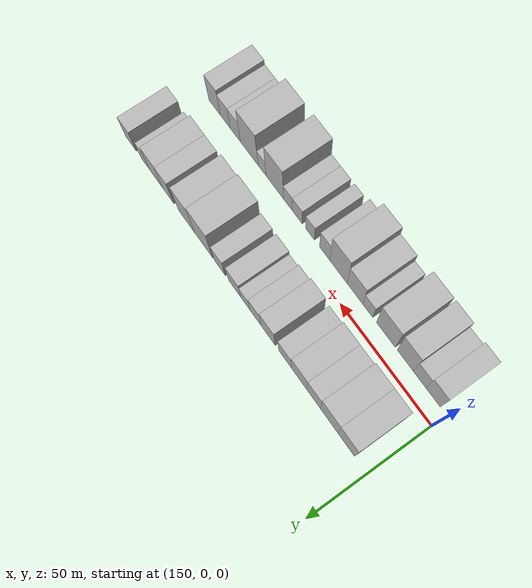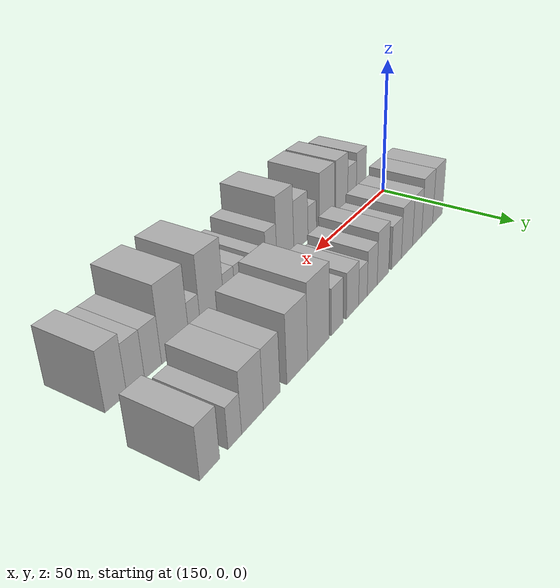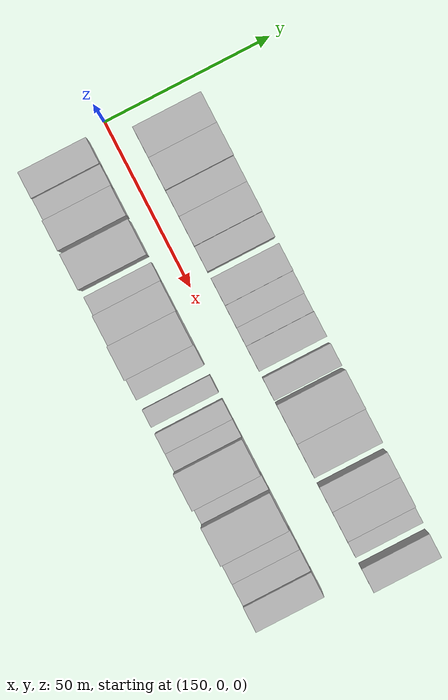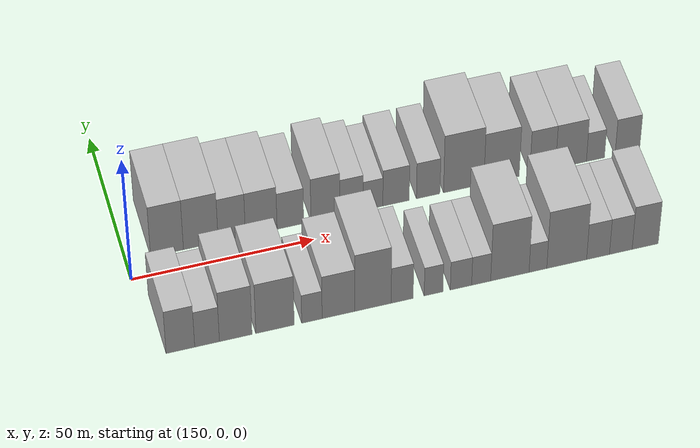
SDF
<sdf version="1.6">
 <world name="default">
  <model name="building_16">
   <static>1</static>
   <pose>161.0909 16.0000 0 0.000000 0.000000 1.570796</pose>
   <link name="link">
    <pose>0 0 10.50 0 0 0</pose>
    <collision name="collision"><geometry><box><size>20.0000 8.9917 21.0000</size></box></geometry></collision>
    <visual name="visual">
     <cast_shadows>0</cast_shadows>
     <geometry><box><size>20.0000 8.9917 21.0000</size></box></geometry>
     <material>
      <script>
       <uri>model://HANNAS_wall/materials/scripts</uri>
       <uri>model://HANNAS_wall/materials/textures</uri>
       <name>vrc/HANNAS_wall</name>
      </script>
     </material>
    </visual>
   </link>
  </model>
  <model name="building_17">
   <static>1</static>
   <pose>170.3540 16.0000 0 0.000000 0.000000 1.570796</pose>
   <link name="link">
    <pose>0 0 10.50 0 0 0</pose>
    <collision name="collision"><geometry><box><size>20.0000 9.5345 21.0000</size></box></geometry></collision>
    <visual name="visual">
     <cast_shadows>0</cast_shadows>
     <geometry><box><size>20.0000 9.5345 21.0000</size></box></geometry>
     <material>
      <script>
       <uri>model://HANNAS_wall/materials/scripts</uri>
       <uri>model://HANNAS_wall/materials/textures</uri>
       <name>vrc/HANNAS_wall</name>
      </script>
     </material>
    </visual>
   </link>
  </model>
  <model name="building_18">
   <static>1</static>
   <pose>178.8785 16.0000 0 0.000000 0.000000 1.570796</pose>
   <link name="link">
    <pose>0 0 9.00 0 0 0</pose>
    <collision name="collision"><geometry><box><size>20.0000 7.5146 18.0000</size></box></geometry></collision>
    <visual name="visual">
     <cast_shadows>0</cast_shadows>
     <geometry><box><size>20.0000 7.5146 18.0000</size></box></geometry>
     <material>
      <script>
       <uri>model://HANNAS_wall/materials/scripts</uri>
       <uri>model://HANNAS_wall/materials/textures</uri>
       <name>vrc/HANNAS_wall</name>
      </script>
     </material>
    </visual>
   </link>
  </model>
  <model name="building_19">
   <static>1</static>
   <pose>187.0019 16.0000 0 0.000000 0.000000 1.570796</pose>
   <link name="link">
    <pose>0 0 9.00 0 0 0</pose>
    <collision name="collision"><geometry><box><size>20.0000 8.7322 18.0000</size></box></geometry></collision>
    <visual name="visual">
     <cast_shadows>0</cast_shadows>
     <geometry><box><size>20.0000 8.7322 18.0000</size></box></geometry>
     <material>
      <script>
       <uri>model://HANNAS_wall/materials/scripts</uri>
       <uri>model://HANNAS_wall/materials/textures</uri>
       <name>vrc/HANNAS_wall</name>
      </script>
     </material>
    </visual>
   </link>
  </model>
  <model name="building_20">
   <static>1</static>
   <pose>195.0579 16.0000 0 0.000000 0.000000 1.570796</pose>
   <link name="link">
    <pose>0 0 7.50 0 0 0</pose>
    <collision name="collision"><geometry><box><size>20.0000 7.3798 15.0000</size></box></geometry></collision>
    <visual name="visual">
     <cast_shadows>0</cast_shadows>
     <geometry><box><size>20.0000 7.3798 15.0000</size></box></geometry>
     <material>
      <script>
       <uri>model://HANNAS_wall/materials/scripts</uri>
       <uri>model://HANNAS_wall/materials/textures</uri>
       <name>vrc/HANNAS_wall</name>
      </script>
     </material>
    </visual>
   </link>
  </model>
  <model name="building_21">
   <static>1</static>
   <pose>204.7672 16.0000 0 0.000000 0.000000 1.570796</pose>
   <link name="link">
    <pose>0 0 9.00 0 0 0</pose>
    <collision name="collision"><geometry><box><size>20.0000 8.0388 18.0000</size></box></geometry></collision>
    <visual name="visual">
     <cast_shadows>0</cast_shadows>
     <geometry><box><size>20.0000 8.0388 18.0000</size></box></geometry>
     <material>
      <script>
       <uri>model://HANNAS_wall/materials/scripts</uri>
       <uri>model://HANNAS_wall/materials/textures</uri>
       <name>vrc/HANNAS_wall</name>
      </script>
     </material>
    </visual>
   </link>
  </model>
  <model name="building_22">
   <static>1</static>
   <pose>212.0530 16.0000 0 0.000000 0.000000 1.570796</pose>
   <link name="link">
    <pose>0 0 7.50 0 0 0</pose>
    <collision name="collision"><geometry><box><size>20.0000 6.5327 15.0000</size></box></geometry></collision>
    <visual name="visual">
     <cast_shadows>0</cast_shadows>
     <geometry><box><size>20.0000 6.5327 15.0000</size></box></geometry>
     <material>
      <script>
       <uri>model://HANNAS_wall/materials/scripts</uri>
       <uri>model://HANNAS_wall/materials/textures</uri>
       <name>vrc/HANNAS_wall</name>
      </script>
     </material>
    </visual>
   </link>
  </model>
  <model name="building_23">
   <static>1</static>
   <pose>218.0440 16.0000 0 0.000000 0.000000 1.570796</pose>
   <link name="link">
    <pose>0 0 6.00 0 0 0</pose>
    <collision name="collision"><geometry><box><size>20.0000 5.4495 12.0000</size></box></geometry></collision>
    <visual name="visual">
     <cast_shadows>0</cast_shadows>
     <geometry><box><size>20.0000 5.4495 12.0000</size></box></geometry>
     <material>
      <script>
       <uri>model://HANNAS_wall/materials/scripts</uri>
       <uri>model://HANNAS_wall/materials/textures</uri>
       <name>vrc/HANNAS_wall</name>
      </script>
     </material>
    </visual>
   </link>
  </model>
  <model name="building_24">
   <static>1</static>
   <pose>224.4603 16.0000 0 0.000000 0.000000 1.570796</pose>
   <link name="link">
    <pose>0 0 7.50 0 0 0</pose>
    <collision name="collision"><geometry><box><size>20.0000 7.3830 15.0000</size></box></geometry></collision>
    <visual name="visual">
     <cast_shadows>0</cast_shadows>
     <geometry><box><size>20.0000 7.3830 15.0000</size></box></geometry>
     <material>
      <script>
       <uri>model://HANNAS_wall/materials/scripts</uri>
       <uri>model://HANNAS_wall/materials/textures</uri>
       <name>vrc/HANNAS_wall</name>
      </script>
     </material>
    </visual>
   </link>
  </model>
  <model name="building_25">
   <static>1</static>
   <pose>233.4538 16.0000 0 0.000000 0.000000 1.570796</pose>
   <link name="link">
    <pose>0 0 7.50 0 0 0</pose>
    <collision name="collision"><geometry><box><size>20.0000 6.6040 15.0000</size></box></geometry></collision>
    <visual name="visual">
     <cast_shadows>0</cast_shadows>
     <geometry><box><size>20.0000 6.6040 15.0000</size></box></geometry>
     <material>
      <script>
       <uri>model://HANNAS_wall/materials/scripts</uri>
       <uri>model://HANNAS_wall/materials/textures</uri>
       <name>vrc/HANNAS_wall</name>
      </script>
     </material>
    </visual>
   </link>
  </model>
  <model name="building_26">
   <static>1</static>
   <pose>243.4445 16.0000 0 0.000000 0.000000 1.570796</pose>
   <link name="link">
    <pose>0 0 12.00 0 0 0</pose>
    <collision name="collision"><geometry><box><size>20.0000 11.3775 24.0000</size></box></geometry></collision>
    <visual name="visual">
     <cast_shadows>0</cast_shadows>
     <geometry><box><size>20.0000 11.3775 24.0000</size></box></geometry>
     <material>
      <script>
       <uri>model://HANNAS_wall/materials/scripts</uri>
       <uri>model://HANNAS_wall/materials/textures</uri>
       <name>vrc/HANNAS_wall</name>
      </script>
     </material>
    </visual>
   </link>
  </model>
  <model name="building_27">
   <static>1</static>
   <pose>254.1172 16.0000 0 0.000000 0.000000 1.570796</pose>
   <link name="link">
    <pose>0 0 10.50 0 0 0</pose>
    <collision name="collision"><geometry><box><size>20.0000 9.9678 21.0000</size></box></geometry></collision>
    <visual name="visual">
     <cast_shadows>0</cast_shadows>
     <geometry><box><size>20.0000 9.9678 21.0000</size></box></geometry>
     <material>
      <script>
       <uri>model://HANNAS_wall/materials/scripts</uri>
       <uri>model://HANNAS_wall/materials/textures</uri>
       <name>vrc/HANNAS_wall</name>
      </script>
     </material>
    </visual>
   </link>
  </model>
  <model name="building_28">
   <static>1</static>
   <pose>265.7583 16.0000 0 0.000000 0.000000 1.570796</pose>
   <link name="link">
    <pose>0 0 9.00 0 0 0</pose>
    <collision name="collision"><geometry><box><size>20.0000 7.3144 18.0000</size></box></geometry></collision>
    <visual name="visual">
     <cast_shadows>0</cast_shadows>
     <geometry><box><size>20.0000 7.3144 18.0000</size></box></geometry>
     <material>
      <script>
       <uri>model://HANNAS_wall/materials/scripts</uri>
       <uri>model://HANNAS_wall/materials/textures</uri>
       <name>vrc/HANNAS_wall</name>
      </script>
     </material>
    </visual>
   </link>
  </model>
  <model name="building_29">
   <static>1</static>
   <pose>273.7991 16.0000 0 0.000000 0.000000 1.570796</pose>
   <link name="link">
    <pose>0 0 9.00 0 0 0</pose>
    <collision name="collision"><geometry><box><size>20.0000 8.7670 18.0000</size></box></geometry></collision>
    <visual name="visual">
     <cast_shadows>0</cast_shadows>
     <geometry><box><size>20.0000 8.7670 18.0000</size></box></geometry>
     <material>
      <script>
       <uri>model://HANNAS_wall/materials/scripts</uri>
       <uri>model://HANNAS_wall/materials/textures</uri>
       <name>vrc/HANNAS_wall</name>
      </script>
     </material>
    </visual>
   </link>
  </model>
  <model name="building_30">
   <static>1</static>
   <pose>280.7726 16.0000 0 0.000000 0.000000 1.570796</pose>
   <link name="link">
    <pose>0 0 6.00 0 0 0</pose>
    <collision name="collision"><geometry><box><size>20.0000 5.1800 12.0000</size></box></geometry></collision>
    <visual name="visual">
     <cast_shadows>0</cast_shadows>
     <geometry><box><size>20.0000 5.1800 12.0000</size></box></geometry>
     <material>
      <script>
       <uri>model://HANNAS_wall/materials/scripts</uri>
       <uri>model://HANNAS_wall/materials/textures</uri>
       <name>vrc/HANNAS_wall</name>
      </script>
     </material>
    </visual>
   </link>
  </model>
  <model name="building_31">
   <static>1</static>
   <pose>289.8794 16.0000 0 0.000000 0.000000 1.570796</pose>
   <link name="link">
    <pose>0 0 7.50 0 0 0</pose>
    <collision name="collision"><geometry><box><size>20.0000 7.0337 15.0000</size></box></geometry></collision>
    <visual name="visual">
     <cast_shadows>0</cast_shadows>
     <geometry><box><size>20.0000 7.0337 15.0000</size></box></geometry>
     <material>
      <script>
       <uri>model://HANNAS_wall/materials/scripts</uri>
       <uri>model://HANNAS_wall/materials/textures</uri>
       <name>vrc/HANNAS_wall</name>
      </script>
     </material>
    </visual>
   </link>
  </model>
  <model name="building_48">
   <static>1</static>
   <pose>156.9252 -16.0000 0 0.000000 0.000000 1.570796</pose>
   <link name="link">
    <pose>0 0 9.00 0 0 0</pose>
    <collision name="collision"><geometry><box><size>20.0000 7.6798 18.0000</size></box></geometry></collision>
    <visual name="visual">
     <cast_shadows>0</cast_shadows>
     <geometry><box><size>20.0000 7.6798 18.0000</size></box></geometry>
     <material>
      <script>
       <uri>model://HANNAS_wall/materials/scripts</uri>
       <uri>model://HANNAS_wall/materials/textures</uri>
       <name>vrc/HANNAS_wall</name>
      </script>
     </material>
    </visual>
   </link>
  </model>
  <model name="building_49">
   <static>1</static>
   <pose>164.0865 -16.0000 0 0.000000 0.000000 1.570796</pose>
   <link name="link">
    <pose>0 0 7.50 0 0 0</pose>
    <collision name="collision"><geometry><box><size>20.0000 6.6427 15.0000</size></box></geometry></collision>
    <visual name="visual">
     <cast_shadows>0</cast_shadows>
     <geometry><box><size>20.0000 6.6427 15.0000</size></box></geometry>
     <material>
      <script>
       <uri>model://HANNAS_wall/materials/scripts</uri>
       <uri>model://HANNAS_wall/materials/textures</uri>
       <name>vrc/HANNAS_wall</name>
      </script>
     </material>
    </visual>
   </link>
  </model>
  <model name="building_50">
   <static>1</static>
   <pose>171.8131 -16.0000 0 0.000000 0.000000 1.570796</pose>
   <link name="link">
    <pose>0 0 10.50 0 0 0</pose>
    <collision name="collision"><geometry><box><size>20.0000 8.8105 21.0000</size></box></geometry></collision>
    <visual name="visual">
     <cast_shadows>0</cast_shadows>
     <geometry><box><size>20.0000 8.8105 21.0000</size></box></geometry>
     <material>
      <script>
       <uri>model://HANNAS_wall/materials/scripts</uri>
       <uri>model://HANNAS_wall/materials/textures</uri>
       <name>vrc/HANNAS_wall</name>
      </script>
     </material>
    </visual>
   </link>
  </model>
  <model name="building_51">
   <static>1</static>
   <pose>182.4260 -16.0000 0 0.000000 0.000000 1.570796</pose>
   <link name="link">
    <pose>0 0 10.50 0 0 0</pose>
    <collision name="collision"><geometry><box><size>20.0000 10.4154 21.0000</size></box></geometry></collision>
    <visual name="visual">
     <cast_shadows>0</cast_shadows>
     <geometry><box><size>20.0000 10.4154 21.0000</size></box></geometry>
     <material>
      <script>
       <uri>model://HANNAS_wall/materials/scripts</uri>
       <uri>model://HANNAS_wall/materials/textures</uri>
       <name>vrc/HANNAS_wall</name>
      </script>
     </material>
    </visual>
   </link>
  </model>
  <model name="building_52">
   <static>1</static>
   <pose>192.4136 -16.0000 0 0.000000 0.000000 1.570796</pose>
   <link name="link">
    <pose>0 0 6.00 0 0 0</pose>
    <collision name="collision"><geometry><box><size>20.0000 5.5596 12.0000</size></box></geometry></collision>
    <visual name="visual">
     <cast_shadows>0</cast_shadows>
     <geometry><box><size>20.0000 5.5596 12.0000</size></box></geometry>
     <material>
      <script>
       <uri>model://HANNAS_wall/materials/scripts</uri>
       <uri>model://HANNAS_wall/materials/textures</uri>
       <name>vrc/HANNAS_wall</name>
      </script>
     </material>
    </visual>
   </link>
  </model>
  <model name="building_53">
   <static>1</static>
   <pose>199.6491 -16.0000 0 0.000000 0.000000 1.570796</pose>
   <link name="link">
    <pose>0 0 9.00 0 0 0</pose>
    <collision name="collision"><geometry><box><size>20.0000 8.9115 18.0000</size></box></geometry></collision>
    <visual name="visual">
     <cast_shadows>0</cast_shadows>
     <geometry><box><size>20.0000 8.9115 18.0000</size></box></geometry>
     <material>
      <script>
       <uri>model://HANNAS_wall/materials/scripts</uri>
       <uri>model://HANNAS_wall/materials/textures</uri>
       <name>vrc/HANNAS_wall</name>
      </script>
     </material>
    </visual>
   </link>
  </model>
  <model name="building_54">
   <static>1</static>
   <pose>209.0632 -16.0000 0 0.000000 0.000000 1.570796</pose>
   <link name="link">
    <pose>0 0 12.00 0 0 0</pose>
    <collision name="collision"><geometry><box><size>20.0000 9.9168 24.0000</size></box></geometry></collision>
    <visual name="visual">
     <cast_shadows>0</cast_shadows>
     <geometry><box><size>20.0000 9.9168 24.0000</size></box></geometry>
     <material>
      <script>
       <uri>model://HANNAS_wall/materials/scripts</uri>
       <uri>model://HANNAS_wall/materials/textures</uri>
       <name>vrc/HANNAS_wall</name>
      </script>
     </material>
    </visual>
   </link>
  </model>
  <model name="building_55">
   <static>1</static>
   <pose>217.0386 -16.0000 0 0.000000 0.000000 1.570796</pose>
   <link name="link">
    <pose>0 0 7.50 0 0 0</pose>
    <collision name="collision"><geometry><box><size>20.0000 6.0341 15.0000</size></box></geometry></collision>
    <visual name="visual">
     <cast_shadows>0</cast_shadows>
     <geometry><box><size>20.0000 6.0341 15.0000</size></box></geometry>
     <material>
      <script>
       <uri>model://HANNAS_wall/materials/scripts</uri>
       <uri>model://HANNAS_wall/materials/textures</uri>
       <name>vrc/HANNAS_wall</name>
      </script>
     </material>
    </visual>
   </link>
  </model>
  <model name="building_56">
   <static>1</static>
   <pose>225.6413 -16.0000 0 0.000000 0.000000 1.570796</pose>
   <link name="link">
    <pose>0 0 6.00 0 0 0</pose>
    <collision name="collision"><geometry><box><size>20.0000 5.1713 12.0000</size></box></geometry></collision>
    <visual name="visual">
     <cast_shadows>0</cast_shadows>
     <geometry><box><size>20.0000 5.1713 12.0000</size></box></geometry>
     <material>
      <script>
       <uri>model://HANNAS_wall/materials/scripts</uri>
       <uri>model://HANNAS_wall/materials/textures</uri>
       <name>vrc/HANNAS_wall</name>
      </script>
     </material>
    </visual>
   </link>
  </model>
  <model name="building_57">
   <static>1</static>
   <pose>233.1741 -16.0000 0 0.000000 0.000000 1.570796</pose>
   <link name="link">
    <pose>0 0 6.00 0 0 0</pose>
    <collision name="collision"><geometry><box><size>20.0000 5.8944 12.0000</size></box></geometry></collision>
    <visual name="visual">
     <cast_shadows>0</cast_shadows>
     <geometry><box><size>20.0000 5.8944 12.0000</size></box></geometry>
     <material>
      <script>
       <uri>model://HANNAS_wall/materials/scripts</uri>
       <uri>model://HANNAS_wall/materials/textures</uri>
       <name>vrc/HANNAS_wall</name>
      </script>
     </material>
    </visual>
   </link>
  </model>
  <model name="building_58">
   <static>1</static>
   <pose>238.7428 -16.0000 0 0.000000 0.000000 1.570796</pose>
   <link name="link">
    <pose>0 0 6.00 0 0 0</pose>
    <collision name="collision"><geometry><box><size>20.0000 5.2430 12.0000</size></box></geometry></collision>
    <visual name="visual">
     <cast_shadows>0</cast_shadows>
     <geometry><box><size>20.0000 5.2430 12.0000</size></box></geometry>
     <material>
      <script>
       <uri>model://HANNAS_wall/materials/scripts</uri>
       <uri>model://HANNAS_wall/materials/textures</uri>
       <name>vrc/HANNAS_wall</name>
      </script>
     </material>
    </visual>
   </link>
  </model>
  <model name="building_59">
   <static>1</static>
   <pose>246.6703 -16.0000 0 0.000000 0.000000 1.570796</pose>
   <link name="link">
    <pose>0 0 12.00 0 0 0</pose>
    <collision name="collision"><geometry><box><size>20.0000 10.6120 24.0000</size></box></geometry></collision>
    <visual name="visual">
     <cast_shadows>0</cast_shadows>
     <geometry><box><size>20.0000 10.6120 24.0000</size></box></geometry>
     <material>
      <script>
       <uri>model://HANNAS_wall/materials/scripts</uri>
       <uri>model://HANNAS_wall/materials/textures</uri>
       <name>vrc/HANNAS_wall</name>
      </script>
     </material>
    </visual>
   </link>
  </model>
  <model name="building_60">
   <static>1</static>
   <pose>254.4450 -16.0000 0 0.000000 0.000000 1.570796</pose>
   <link name="link">
    <pose>0 0 6.00 0 0 0</pose>
    <collision name="collision"><geometry><box><size>20.0000 4.9373 12.0000</size></box></geometry></collision>
    <visual name="visual">
     <cast_shadows>0</cast_shadows>
     <geometry><box><size>20.0000 4.9373 12.0000</size></box></geometry>
     <material>
      <script>
       <uri>model://HANNAS_wall/materials/scripts</uri>
       <uri>model://HANNAS_wall/materials/textures</uri>
       <name>vrc/HANNAS_wall</name>
      </script>
     </material>
    </visual>
   </link>
  </model>
  <model name="building_61">
   <static>1</static>
   <pose>262.4564 -16.0000 0 0.000000 0.000000 1.570796</pose>
   <link name="link">
    <pose>0 0 12.00 0 0 0</pose>
    <collision name="collision"><geometry><box><size>20.0000 11.0855 24.0000</size></box></geometry></collision>
    <visual name="visual">
     <cast_shadows>0</cast_shadows>
     <geometry><box><size>20.0000 11.0855 24.0000</size></box></geometry>
     <material>
      <script>
       <uri>model://HANNAS_wall/materials/scripts</uri>
       <uri>model://HANNAS_wall/materials/textures</uri>
       <name>vrc/HANNAS_wall</name>
      </script>
     </material>
    </visual>
   </link>
  </model>
  <model name="building_62">
   <static>1</static>
   <pose>271.1821 -16.0000 0 0.000000 0.000000 1.570796</pose>
   <link name="link">
    <pose>0 0 7.50 0 0 0</pose>
    <collision name="collision"><geometry><box><size>20.0000 6.3659 15.0000</size></box></geometry></collision>
    <visual name="visual">
     <cast_shadows>0</cast_shadows>
     <geometry><box><size>20.0000 6.3659 15.0000</size></box></geometry>
     <material>
      <script>
       <uri>model://HANNAS_wall/materials/scripts</uri>
       <uri>model://HANNAS_wall/materials/textures</uri>
       <name>vrc/HANNAS_wall</name>
      </script>
     </material>
    </visual>
   </link>
  </model>
  <model name="building_63">
   <static>1</static>
   <pose>277.5419 -16.0000 0 0.000000 0.000000 1.570796</pose>
   <link name="link">
    <pose>0 0 7.50 0 0 0</pose>
    <collision name="collision"><geometry><box><size>20.0000 6.3537 15.0000</size></box></geometry></collision>
    <visual name="visual">
     <cast_shadows>0</cast_shadows>
     <geometry><box><size>20.0000 6.3537 15.0000</size></box></geometry>
     <material>
      <script>
       <uri>model://HANNAS_wall/materials/scripts</uri>
       <uri>model://HANNAS_wall/materials/textures</uri>
       <name>vrc/HANNAS_wall</name>
      </script>
     </material>
    </visual>
   </link>
  </model>
  <model name="building_64">
   <static>1</static>
   <pose>284.3782 -16.0000 0 0.000000 0.000000 1.570796</pose>
   <link name="link">
    <pose>0 0 9.00 0 0 0</pose>
    <collision name="collision"><geometry><box><size>20.0000 7.3188 18.0000</size></box></geometry></collision>
    <visual name="visual">
     <cast_shadows>0</cast_shadows>
     <geometry><box><size>20.0000 7.3188 18.0000</size></box></geometry>
     <material>
      <script>
       <uri>model://HANNAS_wall/materials/scripts</uri>
       <uri>model://HANNAS_wall/materials/textures</uri>
       <name>vrc/HANNAS_wall</name>
      </script>
     </material>
    </visual>
   </link>
  </model>
 </world>
</sdf>
